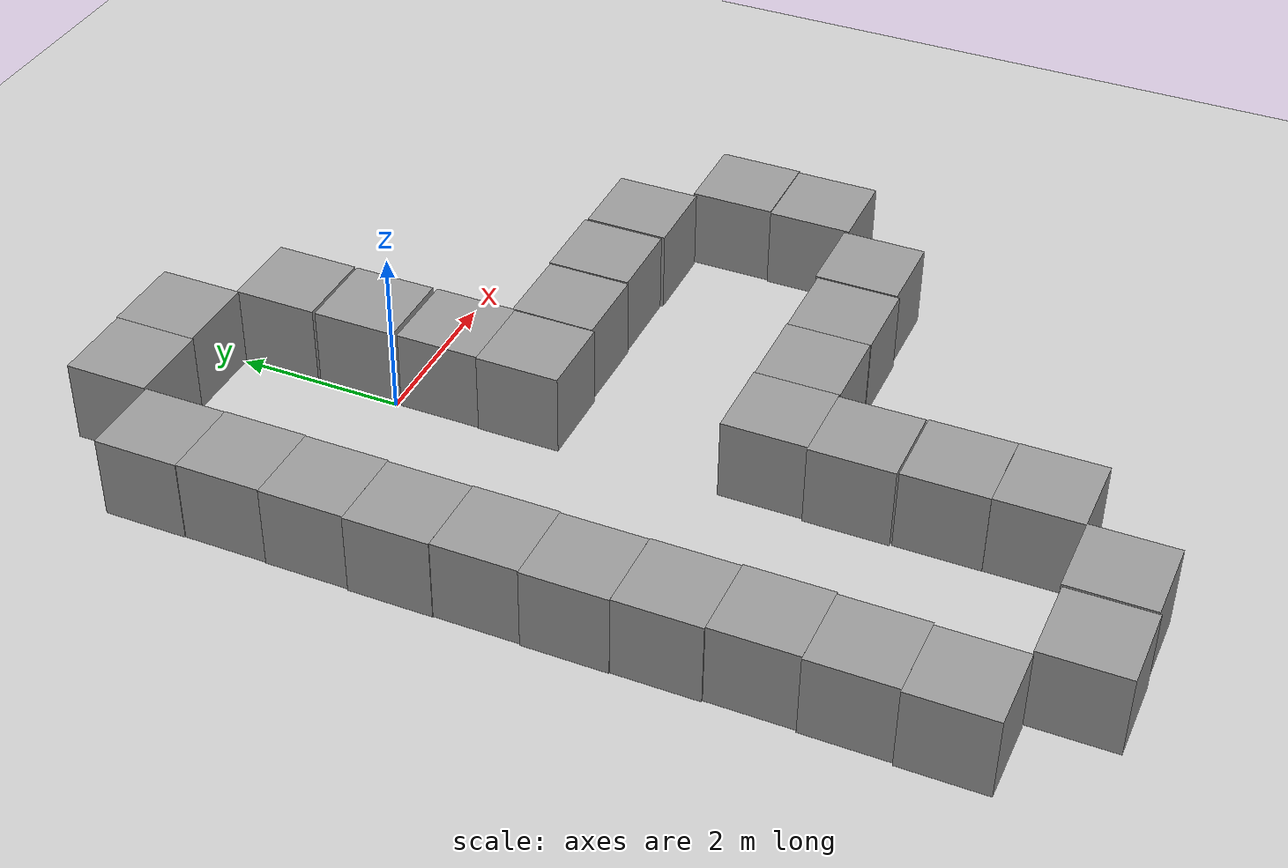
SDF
<sdf version="1.5">
 <world name="default">
  <light name="sun" type="directional">
   <pose>0 0 10 0 -0 0</pose>
   <diffuse>0.8 0.8 0.8 1</diffuse>
   <specular>0.2 0.2 0.2 1</specular>
   <attenuation>
    <range>1000</range>
    <constant>0.9</constant>
    <linear>0.01</linear>
    <quadratic>0.001</quadratic>
   </attenuation>
   <direction>-0.5 0.1 -0.9</direction>
  </light>
  <model name="ground_plane">
   <static>1</static>
   <link name="link">
    <collision name="collision">
     <geometry><plane><normal>0 0 1</normal><size>100 100</size></plane></geometry>
     <surface><friction><ode><mu>100</mu><mu2>50</mu2></ode></friction></surface>
    </collision>
    <visual name="visual">
     <cast_shadows>0</cast_shadows>
     <geometry><plane><normal>0 0 1</normal><size>100 100</size></plane></geometry>
     <material>
      <script><uri>file://media/materials/scripts/gazebo.material</uri><name>Gazebo/Grey</name></script>
     </material>
    </visual>
   </link>
  </model>
  <physics name="default_physics" default="0" type="ode">
   <max_step_size>0.001</max_step_size>
   <real_time_factor>1</real_time_factor>
   <real_time_update_rate>1000</real_time_update_rate>
   <gravity>0 0 -9.8</gravity>
   <magnetic_field>5.5645e-06 2.28758e-05 -4.23884e-05</magnetic_field>
  </physics>
  <scene><ambient>0.4 0.4 0.4 1</ambient><background>0.7 0.7 0.7 1</background><shadows>1</shadows></scene>
  <spherical_coordinates>
   <surface_model>EARTH_WGS84</surface_model>
   <latitude_deg>0</latitude_deg>
   <longitude_deg>0</longitude_deg>
   <elevation>0</elevation>
   <heading_deg>0</heading_deg>
  </spherical_coordinates>
  <model name="unit_box_1">
   <pose>1.52839 -4.47709 0.5 0 0 -8.8e-05</pose>
   <link name="link">
    <inertial>
     <mass>1</mass>
     <inertia><ixx>1</ixx><ixy>0</ixy><ixz>0</ixz><iyy>1</iyy><iyz>0</iyz><izz>1</izz></inertia>
    </inertial>
    <collision name="collision"><geometry><box><size>1 1 1</size></box></geometry></collision>
    <visual name="visual">
     <geometry><box><size>1 1 1</size></box></geometry>
     <material>
      <script><uri>file://media/materials/scripts/gazebo.material</uri><name>Gazebo/Grey</name></script>
     </material>
    </visual>
   </link>
  </model>
  <model name="unit_box_2">
   <pose>1.50841 -1.52229 0.5 0 0 -0.006821</pose>
   <link name="link">
    <inertial>
     <mass>1</mass>
     <inertia><ixx>1</ixx><ixy>0</ixy><ixz>0</ixz><iyy>1</iyy><iyz>0</iyz><izz>1</izz></inertia>
    </inertial>
    <collision name="collision"><geometry><box><size>1 1 1</size></box></geometry></collision>
    <visual name="visual">
     <geometry><box><size>1 1 1</size></box></geometry>
     <material>
      <script><uri>file://media/materials/scripts/gazebo.material</uri><name>Gazebo/Grey</name></script>
     </material>
    </visual>
   </link>
  </model>
  <model name="unit_box_3">
   <pose>2.52839 -4.48506 0.5 -0 -0 -8.9e-05</pose>
   <link name="link">
    <inertial>
     <mass>1</mass>
     <inertia><ixx>1</ixx><ixy>0</ixy><ixz>0</ixz><iyy>1</iyy><iyz>0</iyz><izz>1</izz></inertia>
    </inertial>
    <collision name="collision"><geometry><box><size>1 1 1</size></box></geometry></collision>
    <visual name="visual">
     <geometry><box><size>1 1 1</size></box></geometry>
     <material>
      <script><uri>file://media/materials/scripts/gazebo.material</uri><name>Gazebo/Grey</name></script>
     </material>
    </visual>
   </link>
  </model>
  <model name="unit_box_4">
   <pose>2.52686 -1.50934 0.5 0 -0 0</pose>
   <link name="link">
    <inertial>
     <mass>1</mass>
     <inertia><ixx>1</ixx><ixy>0</ixy><ixz>0</ixz><iyy>1</iyy><iyz>0</iyz><izz>1</izz></inertia>
    </inertial>
    <collision name="collision"><geometry><box><size>1 1 1</size></box></geometry></collision>
    <visual name="visual">
     <geometry><box><size>1 1 1</size></box></geometry>
     <material>
      <script><uri>file://media/materials/scripts/gazebo.material</uri><name>Gazebo/Grey</name></script>
     </material>
    </visual>
   </link>
  </model>
  <model name="unit_box_5">
   <pose>3.55444 -1.53718 0.5 0 -0 0</pose>
   <link name="link">
    <inertial>
     <mass>1</mass>
     <inertia><ixx>1</ixx><ixy>0</ixy><ixz>0</ixz><iyy>1</iyy><iyz>0</iyz><izz>1</izz></inertia>
    </inertial>
    <collision name="collision"><geometry><box><size>1 1 1</size></box></geometry></collision>
    <visual name="visual">
     <geometry><box><size>1 1 1</size></box></geometry>
     <material>
      <script><uri>file://media/materials/scripts/gazebo.material</uri><name>Gazebo/Grey</name></script>
     </material>
    </visual>
   </link>
  </model>
  <model name="unit_box_6">
   <pose>3.54968 -4.45151 0.5 0 -0 0</pose>
   <link name="link">
    <inertial>
     <mass>1</mass>
     <inertia><ixx>1</ixx><ixy>0</ixy><ixz>0</ixz><iyy>1</iyy><iyz>0</iyz><izz>1</izz></inertia>
    </inertial>
    <collision name="collision"><geometry><box><size>1 1 1</size></box></geometry></collision>
    <visual name="visual">
     <geometry><box><size>1 1 1</size></box></geometry>
     <material>
      <script><uri>file://media/materials/scripts/gazebo.material</uri><name>Gazebo/Grey</name></script>
     </material>
    </visual>
   </link>
  </model>
  <model name="unit_box_7">
   <pose>4.57498 -3.4981 0.5 0 -0 0</pose>
   <link name="link">
    <inertial>
     <mass>1</mass>
     <inertia><ixx>1</ixx><ixy>0</ixy><ixz>0</ixz><iyy>1</iyy><iyz>0</iyz><izz>1</izz></inertia>
    </inertial>
    <collision name="collision"><geometry><box><size>1 1 1</size></box></geometry></collision>
    <visual name="visual">
     <geometry><box><size>1 1 1</size></box></geometry>
     <material>
      <script><uri>file://media/materials/scripts/gazebo.material</uri><name>Gazebo/Grey</name></script>
     </material>
    </visual>
   </link>
  </model>
  <model name="unit_box_8">
   <pose>4.60039 -2.49041 0.5 0 -0 0</pose>
   <link name="link">
    <inertial>
     <mass>1</mass>
     <inertia><ixx>1</ixx><ixy>0</ixy><ixz>0</ixz><iyy>1</iyy><iyz>0</iyz><izz>1</izz></inertia>
    </inertial>
    <collision name="collision"><geometry><box><size>1 1 1</size></box></geometry></collision>
    <visual name="visual">
     <geometry><box><size>1 1 1</size></box></geometry>
     <material>
      <script><uri>file://media/materials/scripts/gazebo.material</uri><name>Gazebo/Grey</name></script>
     </material>
    </visual>
   </link>
  </model>
  <model name="unit_box_9">
   <pose>0.528384 -4.46633 0.5 0 -0 -9.7e-05</pose>
   <link name="link">
    <inertial>
     <mass>1</mass>
     <inertia><ixx>1</ixx><ixy>0</ixy><ixz>0</ixz><iyy>1</iyy><iyz>0</iyz><izz>1</izz></inertia>
    </inertial>
    <collision name="collision"><geometry><box><size>1 1 1</size></box></geometry></collision>
    <visual name="visual">
     <geometry><box><size>1 1 1</size></box></geometry>
     <material>
      <script><uri>file://media/materials/scripts/gazebo.material</uri><name>Gazebo/Grey</name></script>
     </material>
    </visual>
   </link>
  </model>
  <model name="unit_box_10">
   <pose>0.49661 -1.55326 0.5 -0 -0 -0.001884</pose>
   <link name="link">
    <inertial>
     <mass>1</mass>
     <inertia><ixx>1</ixx><ixy>0</ixy><ixz>0</ixz><iyy>1</iyy><iyz>0</iyz><izz>1</izz></inertia>
    </inertial>
    <collision name="collision"><geometry><box><size>1 1 1</size></box></geometry></collision>
    <visual name="visual">
     <geometry><box><size>1 1 1</size></box></geometry>
     <material>
      <script><uri>file://media/materials/scripts/gazebo.material</uri><name>Gazebo/Grey</name></script>
     </material>
    </visual>
   </link>
  </model>
  <model name="unit_box_11">
   <pose>-2.50376 -3.51768 0.5 0 0 -0.00038</pose>
   <link name="link">
    <inertial>
     <mass>1</mass>
     <inertia><ixx>1</ixx><ixy>0</ixy><ixz>0</ixz><iyy>1</iyy><iyz>0</iyz><izz>1</izz></inertia>
    </inertial>
    <collision name="collision"><geometry><box><size>1 1 1</size></box></geometry></collision>
    <visual name="visual">
     <geometry><box><size>1 1 1</size></box></geometry>
     <material>
      <script><uri>file://media/materials/scripts/gazebo.material</uri><name>Gazebo/Grey</name></script>
     </material>
    </visual>
   </link>
  </model>
  <model name="unit_box_12">
   <pose>0.512359 -0.553282 0.5 0 0 -0.001882</pose>
   <link name="link">
    <inertial>
     <mass>1</mass>
     <inertia><ixx>1</ixx><ixy>0</ixy><ixz>0</ixz><iyy>1</iyy><iyz>0</iyz><izz>1</izz></inertia>
    </inertial>
    <collision name="collision"><geometry><box><size>1 1 1</size></box></geometry></collision>
    <visual name="visual">
     <geometry><box><size>1 1 1</size></box></geometry>
     <material>
      <script><uri>file://media/materials/scripts/gazebo.material</uri><name>Gazebo/Grey</name></script>
     </material>
    </visual>
   </link>
  </model>
  <model name="unit_box_13">
   <pose>0.507898 0.501921 0.5 0 -0 0</pose>
   <link name="link">
    <inertial>
     <mass>1</mass>
     <inertia><ixx>1</ixx><ixy>0</ixy><ixz>0</ixz><iyy>1</iyy><iyz>0</iyz><izz>1</izz></inertia>
    </inertial>
    <collision name="collision"><geometry><box><size>1 1 1</size></box></geometry></collision>
    <visual name="visual">
     <geometry><box><size>1 1 1</size></box></geometry>
     <material>
      <script><uri>file://media/materials/scripts/gazebo.material</uri><name>Gazebo/Grey</name></script>
     </material>
    </visual>
   </link>
  </model>
  <model name="unit_box_14">
   <pose>0.514005 1.53475 0.5 0 -0 -0.005156</pose>
   <link name="link">
    <inertial>
     <mass>1</mass>
     <inertia><ixx>1</ixx><ixy>0</ixy><ixz>0</ixz><iyy>1</iyy><iyz>0</iyz><izz>1</izz></inertia>
    </inertial>
    <collision name="collision"><geometry><box><size>1 1 1</size></box></geometry></collision>
    <visual name="visual">
     <geometry><box><size>1 1 1</size></box></geometry>
     <material>
      <script><uri>file://media/materials/scripts/gazebo.material</uri><name>Gazebo/Grey</name></script>
     </material>
    </visual>
   </link>
  </model>
  <model name="unit_box_15">
   <pose>-0.482206 2.51493 0.5 0 0 -0.00265</pose>
   <link name="link">
    <inertial>
     <mass>1</mass>
     <inertia><ixx>1</ixx><ixy>0</ixy><ixz>0</ixz><iyy>1</iyy><iyz>0</iyz><izz>1</izz></inertia>
    </inertial>
    <collision name="collision"><geometry><box><size>1 1 1</size></box></geometry></collision>
    <visual name="visual">
     <geometry><box><size>1 1 1</size></box></geometry>
     <material>
      <script><uri>file://media/materials/scripts/gazebo.material</uri><name>Gazebo/Grey</name></script>
     </material>
    </visual>
   </link>
  </model>
  <model name="unit_box_16">
   <pose>-1.48226 2.5038 0.5 -0 -0 -0.002648</pose>
   <link name="link">
    <inertial>
     <mass>1</mass>
     <inertia><ixx>1</ixx><ixy>0</ixy><ixz>0</ixz><iyy>1</iyy><iyz>0</iyz><izz>1</izz></inertia>
    </inertial>
    <collision name="collision"><geometry><box><size>1 1 1</size></box></geometry></collision>
    <visual name="visual">
     <geometry><box><size>1 1 1</size></box></geometry>
     <material>
      <script><uri>file://media/materials/scripts/gazebo.material</uri><name>Gazebo/Grey</name></script>
     </material>
    </visual>
   </link>
  </model>
  <model name="unit_box_17">
   <pose>-2.47717 1.48263 0.5 0 0 -6.8e-05</pose>
   <link name="link">
    <inertial>
     <mass>1</mass>
     <inertia><ixx>1</ixx><ixy>0</ixy><ixz>0</ixz><iyy>1</iyy><iyz>0</iyz><izz>1</izz></inertia>
    </inertial>
    <collision name="collision"><geometry><box><size>1 1 1</size></box></geometry></collision>
    <visual name="visual">
     <geometry><box><size>1 1 1</size></box></geometry>
     <material>
      <script><uri>file://media/materials/scripts/gazebo.material</uri><name>Gazebo/Grey</name></script>
     </material>
    </visual>
   </link>
  </model>
  <model name="unit_box_18">
   <pose>-2.46891 0.482512 0.5 0 0 -0.000144</pose>
   <link name="link">
    <inertial>
     <mass>1</mass>
     <inertia><ixx>1</ixx><ixy>0</ixy><ixz>0</ixz><iyy>1</iyy><iyz>0</iyz><izz>1</izz></inertia>
    </inertial>
    <collision name="collision"><geometry><box><size>1 1 1</size></box></geometry></collision>
    <visual name="visual">
     <geometry><box><size>1 1 1</size></box></geometry>
     <material>
      <script><uri>file://media/materials/scripts/gazebo.material</uri><name>Gazebo/Grey</name></script>
     </material>
    </visual>
   </link>
  </model>
  <model name="unit_box_19">
   <pose>-2.47918 -0.517504 0.5 0 -0 -0.000163</pose>
   <link name="link">
    <inertial>
     <mass>1</mass>
     <inertia><ixx>1</ixx><ixy>0</ixy><ixz>0</ixz><iyy>1</iyy><iyz>0</iyz><izz>1</izz></inertia>
    </inertial>
    <collision name="collision"><geometry><box><size>1 1 1</size></box></geometry></collision>
    <visual name="visual">
     <geometry><box><size>1 1 1</size></box></geometry>
     <material>
      <script><uri>file://media/materials/scripts/gazebo.material</uri><name>Gazebo/Grey</name></script>
     </material>
    </visual>
   </link>
  </model>
  <model name="unit_box_20">
   <pose>-2.49643 -1.51762 0.5 0 -0 -0.00036</pose>
   <link name="link">
    <inertial>
     <mass>1</mass>
     <inertia><ixx>1</ixx><ixy>0</ixy><ixz>0</ixz><iyy>1</iyy><iyz>0</iyz><izz>1</izz></inertia>
    </inertial>
    <collision name="collision"><geometry><box><size>1 1 1</size></box></geometry></collision>
    <visual name="visual">
     <geometry><box><size>1 1 1</size></box></geometry>
     <material>
      <script><uri>file://media/materials/scripts/gazebo.material</uri><name>Gazebo/Grey</name></script>
     </material>
    </visual>
   </link>
  </model>
  <model name="unit_box_21">
   <pose>-2.48718 -2.51766 0.5 0 0 -0.000355</pose>
   <link name="link">
    <inertial>
     <mass>1</mass>
     <inertia><ixx>1</ixx><ixy>0</ixy><ixz>0</ixz><iyy>1</iyy><iyz>0</iyz><izz>1</izz></inertia>
    </inertial>
    <collision name="collision"><geometry><box><size>1 1 1</size></box></geometry></collision>
    <visual name="visual">
     <geometry><box><size>1 1 1</size></box></geometry>
     <material>
      <script><uri>file://media/materials/scripts/gazebo.material</uri><name>Gazebo/Grey</name></script>
     </material>
    </visual>
   </link>
  </model>
  <model name="unit_box_22">
   <pose>0.498315 -5.46634 0.5 0 0 -0.000113</pose>
   <link name="link">
    <inertial>
     <mass>1</mass>
     <inertia><ixx>1</ixx><ixy>0</ixy><ixz>0</ixz><iyy>1</iyy><iyz>0</iyz><izz>1</izz></inertia>
    </inertial>
    <collision name="collision"><geometry><box><size>1 1 1</size></box></geometry></collision>
    <visual name="visual">
     <geometry><box><size>1 1 1</size></box></geometry>
     <material>
      <script><uri>file://media/materials/scripts/gazebo.material</uri><name>Gazebo/Grey</name></script>
     </material>
    </visual>
   </link>
  </model>
  <model name="unit_box_23">
   <pose>-2.49239 -4.51776 0.5 0 0 -0.000394</pose>
   <link name="link">
    <inertial>
     <mass>1</mass>
     <inertia><ixx>1</ixx><ixy>0</ixy><ixz>0</ixz><iyy>1</iyy><iyz>0</iyz><izz>1</izz></inertia>
    </inertial>
    <collision name="collision"><geometry><box><size>1 1 1</size></box></geometry></collision>
    <visual name="visual">
     <geometry><box><size>1 1 1</size></box></geometry>
     <material>
      <script><uri>file://media/materials/scripts/gazebo.material</uri><name>Gazebo/Grey</name></script>
     </material>
    </visual>
   </link>
  </model>
  <model name="unit_box_24">
   <pose>-2.47283 -5.51779 0.5 0 0 -0.000386</pose>
   <link name="link">
    <inertial>
     <mass>1</mass>
     <inertia><ixx>1</ixx><ixy>0</ixy><ixz>0</ixz><iyy>1</iyy><iyz>0</iyz><izz>1</izz></inertia>
    </inertial>
    <collision name="collision"><geometry><box><size>1 1 1</size></box></geometry></collision>
    <visual name="visual">
     <geometry><box><size>1 1 1</size></box></geometry>
     <material>
      <script><uri>file://media/materials/scripts/gazebo.material</uri><name>Gazebo/Grey</name></script>
     </material>
    </visual>
   </link>
  </model>
  <model name="unit_box_25">
   <pose>-2.49869 -6.5178 0.5 0 0 -0.000373</pose>
   <link name="link">
    <inertial>
     <mass>1</mass>
     <inertia><ixx>1</ixx><ixy>0</ixy><ixz>0</ixz><iyy>1</iyy><iyz>0</iyz><izz>1</izz></inertia>
    </inertial>
    <collision name="collision"><geometry><box><size>1 1 1</size></box></geometry></collision>
    <visual name="visual">
     <geometry><box><size>1 1 1</size></box></geometry>
     <material>
      <script><uri>file://media/materials/scripts/gazebo.material</uri><name>Gazebo/Grey</name></script>
     </material>
    </visual>
   </link>
  </model>
  <model name="unit_box_26">
   <pose>0.512462 -6.48613 0.5 0 -0 0</pose>
   <link name="link">
    <inertial>
     <mass>1</mass>
     <inertia><ixx>1</ixx><ixy>0</ixy><ixz>0</ixz><iyy>1</iyy><iyz>0</iyz><izz>1</izz></inertia>
    </inertial>
    <collision name="collision"><geometry><box><size>1 1 1</size></box></geometry></collision>
    <visual name="visual">
     <geometry><box><size>1 1 1</size></box></geometry>
     <material>
      <script><uri>file://media/materials/scripts/gazebo.material</uri><name>Gazebo/Grey</name></script>
     </material>
    </visual>
   </link>
  </model>
  <model name="unit_box_27">
   <pose>0.517128 -7.48712 0.5 -0 -0 -0.001525</pose>
   <link name="link">
    <inertial>
     <mass>1</mass>
     <inertia><ixx>1</ixx><ixy>0</ixy><ixz>0</ixz><iyy>1</iyy><iyz>0</iyz><izz>1</izz></inertia>
    </inertial>
    <collision name="collision"><geometry><box><size>1 1 1</size></box></geometry></collision>
    <visual name="visual">
     <geometry><box><size>1 1 1</size></box></geometry>
     <material>
      <script><uri>file://media/materials/scripts/gazebo.material</uri><name>Gazebo/Grey</name></script>
     </material>
    </visual>
   </link>
  </model>
  <model name="unit_box_28">
   <pose>-2.52978 -7.51785 0.5 0 0 -0.000321</pose>
   <link name="link">
    <inertial>
     <mass>1</mass>
     <inertia><ixx>1</ixx><ixy>0</ixy><ixz>0</ixz><iyy>1</iyy><iyz>0</iyz><izz>1</izz></inertia>
    </inertial>
    <collision name="collision"><geometry><box><size>1 1 1</size></box></geometry></collision>
    <visual name="visual">
     <geometry><box><size>1 1 1</size></box></geometry>
     <material>
      <script><uri>file://media/materials/scripts/gazebo.material</uri><name>Gazebo/Grey</name></script>
     </material>
    </visual>
   </link>
  </model>
  <model name="unit_box_29">
   <pose>-1.48673 -8.50532 0.5 0 -0 0</pose>
   <link name="link">
    <inertial>
     <mass>1</mass>
     <inertia><ixx>1</ixx><ixy>0</ixy><ixz>0</ixz><iyy>1</iyy><iyz>0</iyz><izz>1</izz></inertia>
    </inertial>
    <collision name="collision"><geometry><box><size>1 1 1</size></box></geometry></collision>
    <visual name="visual">
     <geometry><box><size>1 1 1</size></box></geometry>
     <material>
      <script><uri>file://media/materials/scripts/gazebo.material</uri><name>Gazebo/Grey</name></script>
     </material>
    </visual>
   </link>
  </model>
  <model name="unit_box_30">
   <pose>-0.459186 -8.48562 0.5 0 -1e-06 -0.001579</pose>
   <link name="link">
    <inertial>
     <mass>1</mass>
     <inertia><ixx>1</ixx><ixy>0</ixy><ixz>0</ixz><iyy>1</iyy><iyz>0</iyz><izz>1</izz></inertia>
    </inertial>
    <collision name="collision"><geometry><box><size>1 1 1</size></box></geometry></collision>
    <visual name="visual">
     <geometry><box><size>1 1 1</size></box></geometry>
     <material>
      <script><uri>file://media/materials/scripts/gazebo.material</uri><name>Gazebo/Grey</name></script>
     </material>
    </visual>
   </link>
  </model>
 </world>
</sdf>
